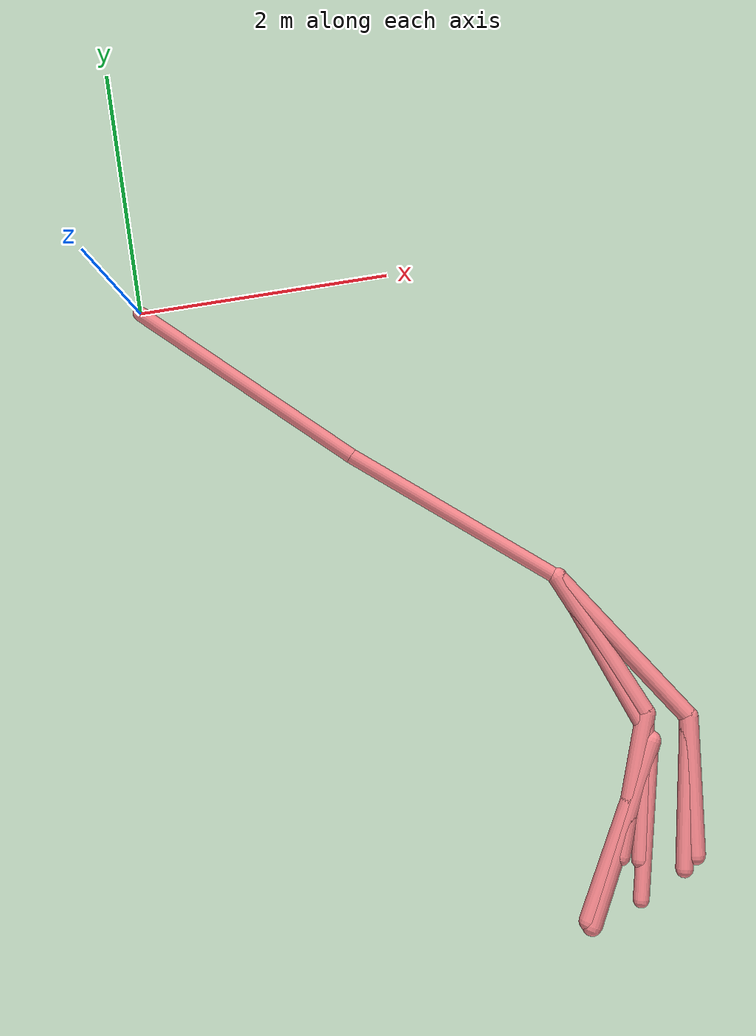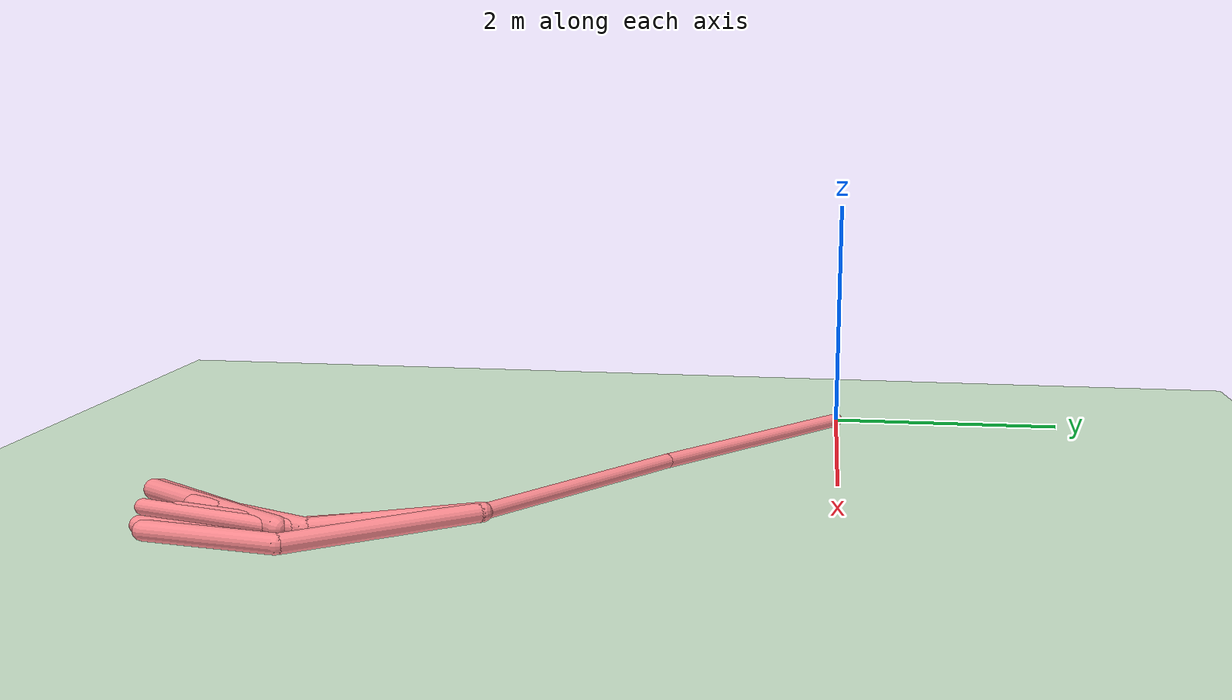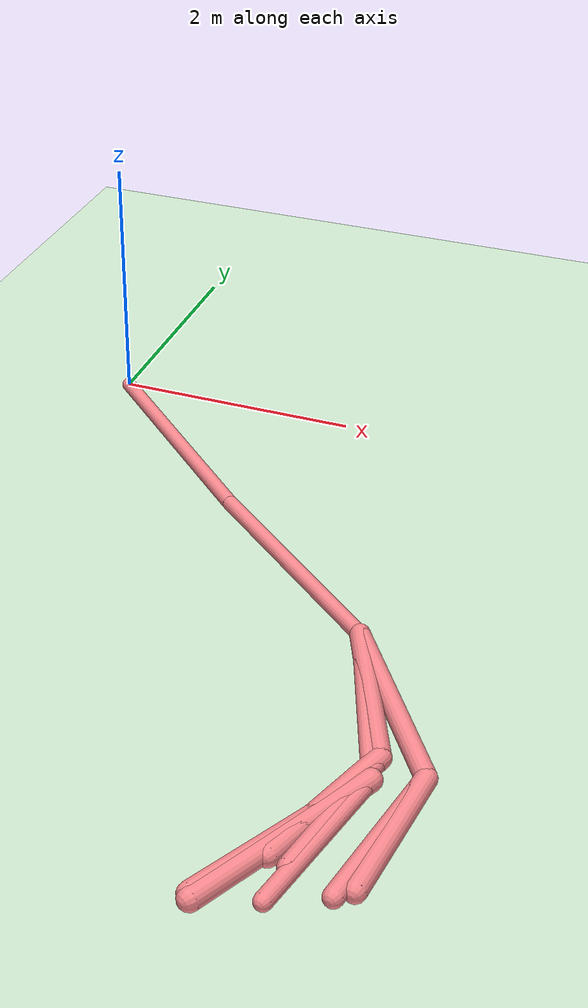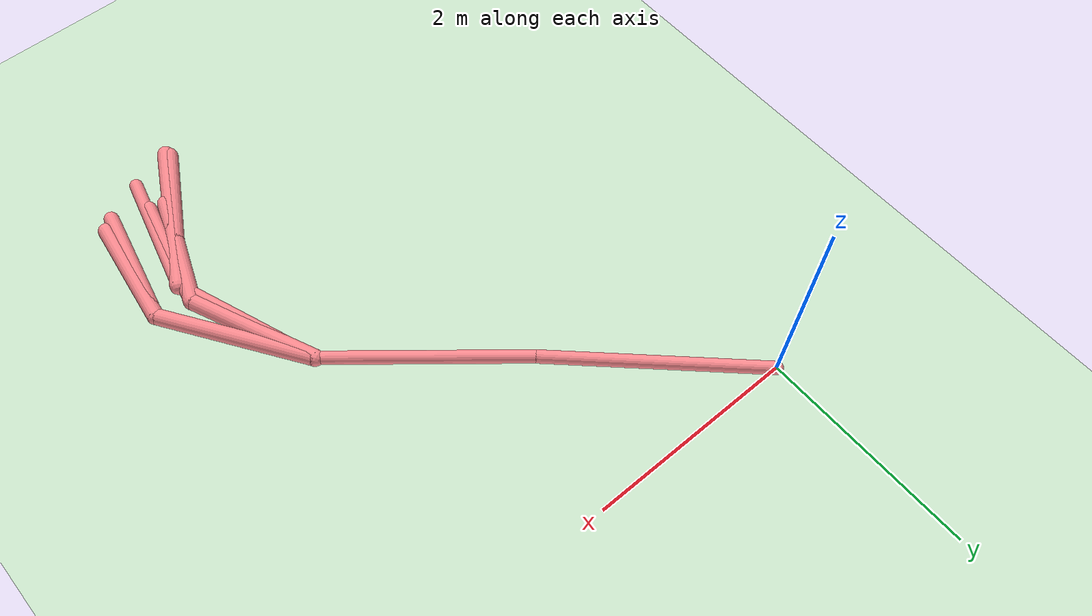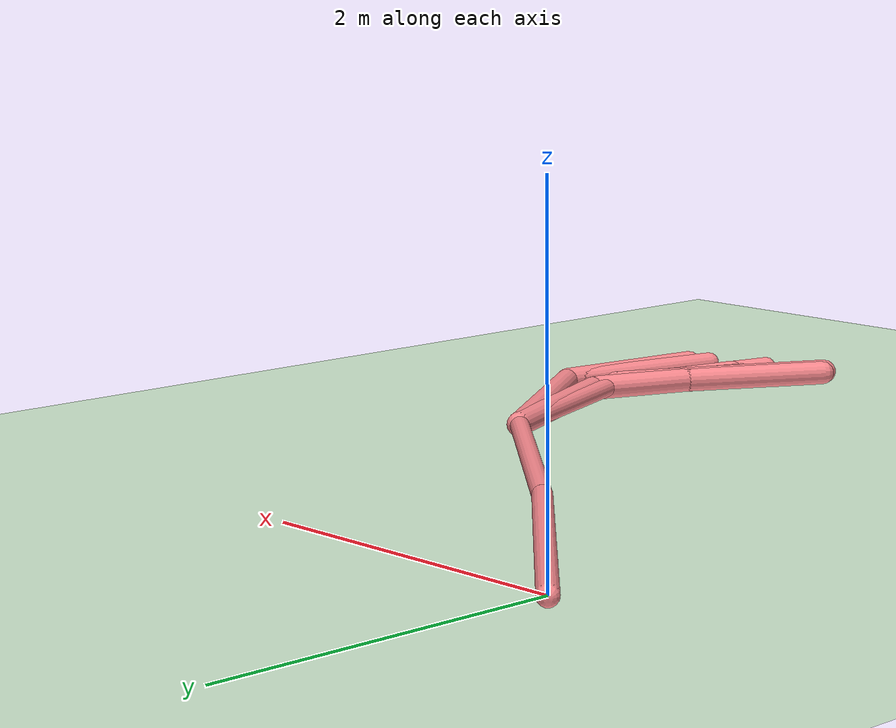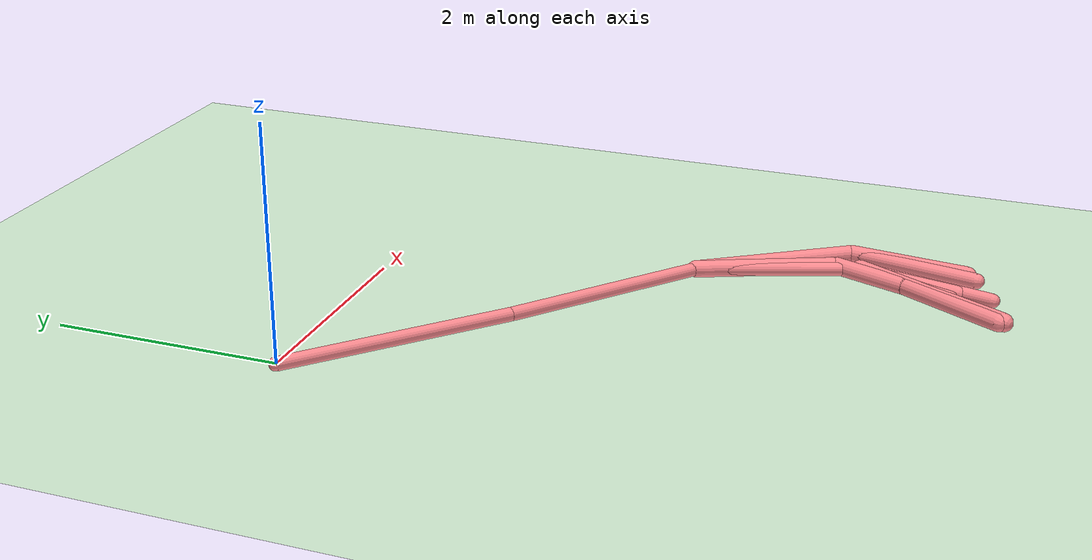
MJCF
<mujoco model="swimmer">
  <compiler angle="degree" coordinate="global" inertiafromgeom="true"/>
  <option collision="predefined" density="4000" integrator="RK4" timestep="0.01" viscosity="0.1"/>
  <default>
    <geom conaffinity="1" condim="1" contype="1" margin="0.001" rgba=".98 .54 .56 1."/>
    <joint armature="0.1"/>
  </default>
  <visual>
    <headlight ambient=".1 .1 .1" diffuse=".6 .6 .6" specular="0.3 0.3 0.3"/>
    <map znear=".01"/>
    <quality shadowsize="16384"/>
  </visual>
  <worldbody>
    <light cutoff="100" diffuse="1 1 1" dir="-1 0 -1.3" directional="true" exponent="1" pos="1 0 1.3" specular=".1 .1 .1" castshadow="true"/>
    <geom conaffinity="1" condim="3" name="floor" pos="0 0 -0.1" rgba="0.8 0.9 0.8 1" size="40 40 0.1" type="plane" material="grid_new"/>
    <body name="0" pos="0 0 0">
      <camera name="track" mode="trackcom" pos="0 -3 3" xyaxes="1 0 0 0 1 1"/>
      <joint axis="1 0 0" name="slider1" pos="0 0 0" type="slide"/>
      <joint axis="0 1 0" name="slider2" pos="0 0 0" type="slide"/>
      <joint axis="0 0 1" name="0_joint" pos="0 0 0" type="hinge"/>
      <geom density="1000" fromto="-0.000063 0.000059 0 1.499174 -1.403069 0" size="0.06" type="capsule"/>
      <body name="1" pos="1.499174 -1.403069 0">
        <joint axis="0 0 1" limited="true" name="1_joint" pos="1.499174 -1.403069 0" range="-100 100" type="hinge"/>
        <geom density="1000" fromto="1.49917 -1.403065 0 2.958171 -2.60889 0" size="0.060002" type="capsule"/>
        <body name="11" pos="2.958171 -2.60889 0">
          <joint axis="0 0 1" limited="true" name="11_joint" pos="2.958171 -2.60889 0" range="-100 100" type="hinge"/>
          <geom density="1000" fromto="2.956677 -2.605455 0 3.459746 -3.761886 0" size="0.076314" type="capsule"/>
          <body name="111" pos="3.459746 -3.761886 0">
            <joint axis="0 0 1" limited="true" name="111_joint" pos="3.459746 -3.761886 0" range="-100 100" type="hinge"/>
            <geom density="1000" fromto="3.459906 -3.761454 0 3.076961 -4.802203 0" size="0.078263" type="capsule"/>
          </body>
          <body name="211" pos="3.459746 -3.761886 0">
            <joint axis="0 0 1" limited="true" name="211_joint" pos="3.459746 -3.761886 0" range="-100 100" type="hinge"/>
            <geom density="1000" fromto="3.459768 -3.761829 0 3.083601 -4.790176 0" size="0.073736" type="capsule"/>
          </body>
          <body name="311" pos="3.459746 -3.761886 0">
            <joint axis="0 0 1" limited="true" name="311_joint" pos="3.459746 -3.761886 0" range="-100 100" type="hinge"/>
            <geom density="1000" fromto="3.459793 -3.761673 0 3.222917 -4.85415 0" size="0.069535" type="capsule"/>
          </body>
        </body>
        <body name="21" pos="2.958171 -2.60889 0">
          <joint axis="0 0 1" limited="true" name="21_joint" pos="2.958171 -2.60889 0" range="-100 100" type="hinge"/>
          <geom density="1000" fromto="2.951287 -2.590234 0 3.462124 -3.974638 0" size="0.060678" type="capsule"/>
          <body name="121" pos="3.462124 -3.974638 0">
            <joint axis="0 0 1" limited="true" name="121_joint" pos="3.462124 -3.974638 0" range="-100 100" type="hinge"/>
            <geom density="1000" fromto="3.462124 -3.974638 0 2.77067 -5.285234 0" size="0.081071" type="capsule"/>
          </body>
          <body name="221" pos="3.462124 -3.974638 0">
            <joint axis="0 0 1" limited="true" name="221_joint" pos="3.462124 -3.974638 0" range="-100 100" type="hinge"/>
            <geom density="1000" fromto="3.462143 -3.97456 0 3.176839 -5.152598 0" size="0.062815" type="capsule"/>
          </body>
          <body name="321" pos="3.462124 -3.974638 0">
            <joint axis="0 0 1" limited="true" name="321_joint" pos="3.462124 -3.974638 0" range="-100 100" type="hinge"/>
            <geom density="1000" fromto="3.462127 -3.974633 0 2.751454 -5.24828 0" size="0.07792" type="capsule"/>
          </body>
        </body>
        <body name="31" pos="2.958171 -2.60889 0">
          <joint axis="0 0 1" limited="true" name="31_joint" pos="2.958171 -2.60889 0" range="-100 100" type="hinge"/>
          <geom density="1000" fromto="2.957893 -2.608479 0 3.785596 -3.835471 0" size="0.074892" type="capsule"/>
          <body name="131" pos="3.785596 -3.835471 0">
            <joint axis="0 0 1" limited="true" name="131_joint" pos="3.785596 -3.835471 0" range="-100 100" type="hinge"/>
            <geom density="1000" fromto="3.78561 -3.835406 0 3.548438 -4.976114 0" size="0.069477" type="capsule"/>
          </body>
          <body name="231" pos="3.785596 -3.835471 0">
            <joint axis="0 0 1" limited="true" name="231_joint" pos="3.785596 -3.835471 0" range="-100 100" type="hinge"/>
            <geom density="1000" fromto="3.785596 -3.83547 0 3.652129 -4.887086 0" size="0.077041" type="capsule"/>
          </body>
        </body>
      </body>
    </body>
  </worldbody>
  <actuator>
    <motor ctrllimited="true" ctrlrange="-1 1" gear="282.396248" joint="1_joint" name="1_joint"/>
    <motor ctrllimited="true" ctrlrange="-1 1" gear="260.25667" joint="11_joint" name="11_joint"/>
    <motor ctrllimited="true" ctrlrange="-1 1" gear="211.593308" joint="21_joint" name="21_joint"/>
    <motor ctrllimited="true" ctrlrange="-1 1" gear="147.740169" joint="111_joint" name="111_joint"/>
    <motor ctrllimited="true" ctrlrange="-1 1" gear="213.681608" joint="31_joint" name="31_joint"/>
    <motor ctrllimited="true" ctrlrange="-1 1" gear="181.027197" joint="211_joint" name="211_joint"/>
    <motor ctrllimited="true" ctrlrange="-1 1" gear="150.828229" joint="121_joint" name="121_joint"/>
    <motor ctrllimited="true" ctrlrange="-1 1" gear="169.055544" joint="311_joint" name="311_joint"/>
    <motor ctrllimited="true" ctrlrange="-1 1" gear="187.567114" joint="221_joint" name="221_joint"/>
    <motor ctrllimited="true" ctrlrange="-1 1" gear="148.005386" joint="131_joint" name="131_joint"/>
    <motor ctrllimited="true" ctrlrange="-1 1" gear="178.043999" joint="321_joint" name="321_joint"/>
    <motor ctrllimited="true" ctrlrange="-1 1" gear="154.55929" joint="231_joint" name="231_joint"/>
  </actuator>
  <asset>
    <texture type="skybox" builtin="gradient" rgb1=".4 .5 .6" rgb2="0 0 0" width="100" height="100"/>
    <texture builtin="flat" height="1278" mark="cross" markrgb="1 1 1" name="texgeom" random="0.01" rgb1="0.8 0.6 0.4" rgb2="0.8 0.6 0.4" type="cube" width="127"/>
    <texture builtin="checker" height="100" name="texplane" rgb1="0 0 0" rgb2="0.8 0.8 0.8" type="2d" width="100"/>
    <material name="MatPlane" reflectance="0.5" shininess="1" specular="1" texrepeat="60 60" texture="texplane"/>
    <material name="geom" texture="texgeom" texuniform="true"/>
    <texture name="grid_new" type="2d" builtin="checker" rgb1=".1 .3 .2" rgb2=".2 .4 .3" width="1000" height="1000" mark="none" markrgb=".8 .6 .4"/>
    <material name="grid_new" texture="grid_new" texrepeat="0.2 0.2" texuniform="true" reflectance=".2"/>
  </asset>
</mujoco>
